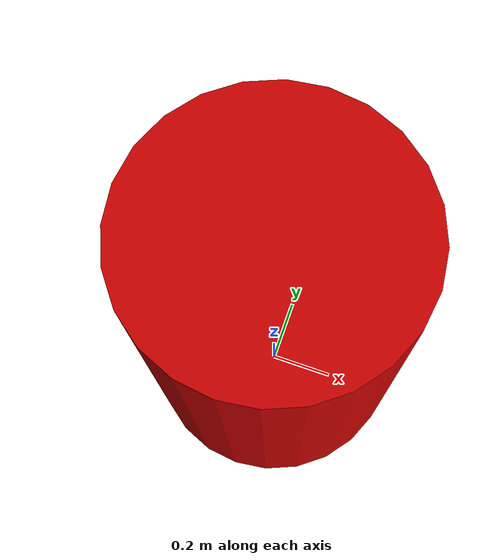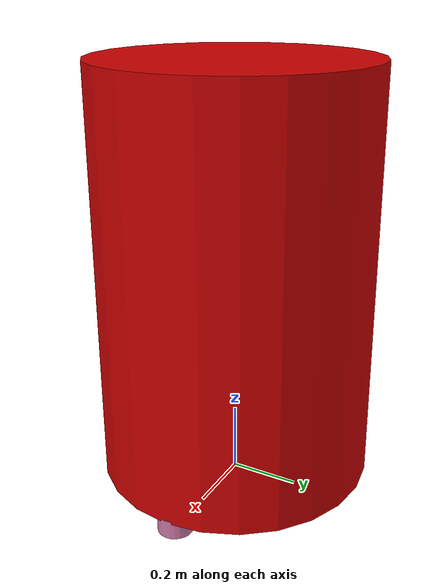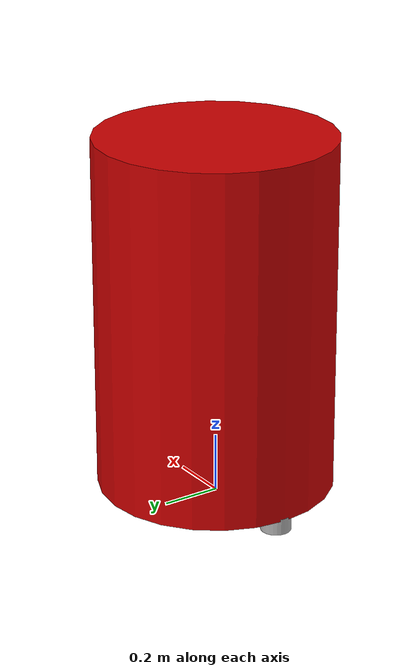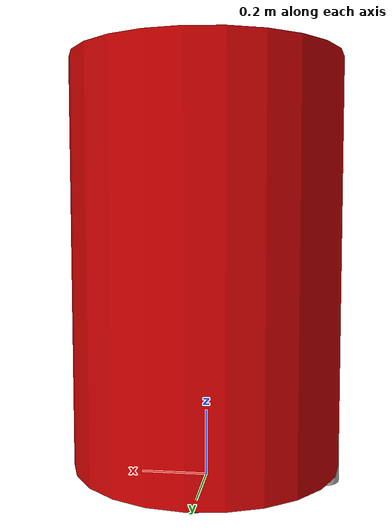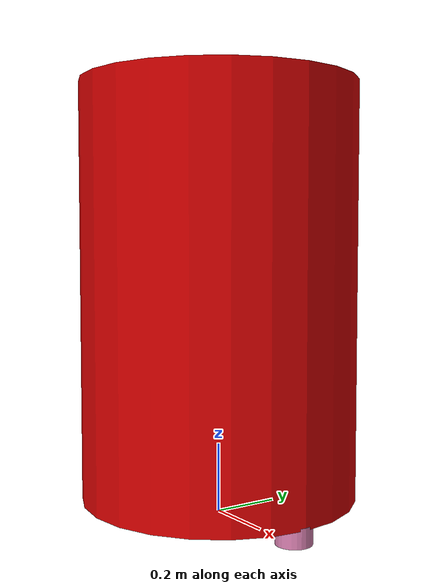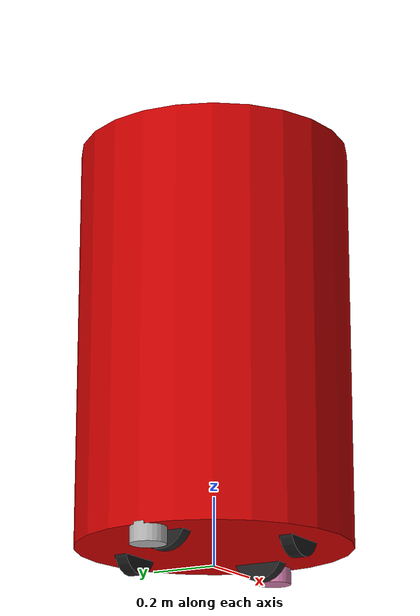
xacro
<?xml version="1.0"?>
<robot xmlns:xacro="http://www.ros.org/wiki/xacro">

    <xacro:include filename="inertial_macros.xacro"/>

    <material name="white">
        <color rgba="1 1 1 1"/>
    </material>

    <material name="orange">
		<color rgba="1 0.3 0.1 1"/>
    </material>

    <material name="blue">
		<color rgba="0.2 0.2 1 1"/>
    </material>

    <material name="black">
		<color rgba="0 0 0 1"/>
    </material>

	<material name="red">
		<color rgba="0.8 0.0 0.0 1"/>
	</material>

	<material name="green">
		<color rgba="0.0 0.8 0.0 1"/>
	</material>

    <!-- BASE LINK -->

    <link name="base_link_r2">
    </link>

    <!-- chassis_r2 LINK -->
	<joint name="chassis_r2_joint" type="fixed">
		<parent link="base_link_r2"/>
		<child link="chassis_r2"/>
		<origin xyz="0 0 0.55"/>
	</joint>

	<link name="chassis_r2">
		<visual>
			<origin xyz="0 0 0.1"/>
			<geometry>
				<cylinder radius="0.4" length="1.2"/>
			</geometry>
			<material name="red"/>
		</visual>

		<collision>
			<origin xyz="0 0 0.2"/>
			<geometry>
				<cylinder radius="0.4" length="1.2"/>
			</geometry>
		</collision>

		<xacro:inertial_cylinder mass="25.0" radius="0.4" length="1.2">
        	<origin xyz="0 0 -0.6" rpy="0 0 0"/>
    	</xacro:inertial_cylinder>
	</link>

	<gazebo reference="chassis_r2">
        <material>Gazebo/White</material>
    </gazebo>

	<!-- WHEEL1 LINK -->
	<joint name="wheel1_joint_r2" type="continuous">
		<parent link="base_link_r2"/>
		<child link="wheel1_link_r2"/>
		<origin xyz="0 0.27 0.08" rpy="-${pi/2} 0 0"/>
		<axis xyz="0 0 1"/>
	</joint>

	<link name="wheel1_link_r2">
		<visual>
			<geometry>
				<cylinder radius="0.08" length="0.04"/>
			</geometry>
		</visual>

		<collision>
			<geometry>
				<cylinder radius="0.08" length="0.04"/>
			</geometry>
		</collision>

		<xacro:inertial_cylinder mass="0.1" length="0.4" radius="0.8">
        	<origin xyz="0 0 0" rpy="0 0 0"/>
    	</xacro:inertial_cylinder>
	</link>

	<gazebo reference="wheel1_link_r2">
        <material>Gazebo/Black</material>
		<mu1 value="0.5"/>
		<mu2 value="0.5"/>
    </gazebo>

	<!-- WHEEL2 LINK -->
	<joint name="wheel2_joint_r2" type="continuous">
		<parent link="base_link_r2"/>
		<child link="wheel2_link_r2"/>
		<origin xyz="0 -0.27 0.08" rpy="${pi/2} 0 0"/>
		<axis xyz="0 0 -1"/>
	</joint>

	<link name="wheel2_link_r2">
		<visual>
			<geometry>
				<cylinder radius="0.08" length="0.04"/>
			</geometry>
		</visual>

		<collision>
			<geometry>
				<cylinder radius="0.08" length="0.04"/>
			</geometry>
		</collision>

		<xacro:inertial_cylinder mass="0.1" length="0.4" radius="0.8">
        	<origin xyz="0 0 0" rpy="0 0 0"/>
    	</xacro:inertial_cylinder>
	</link>

	<gazebo reference="wheel2_link_r2">
        <material>Gazebo/Black</material>
		<mu1 value="0.5"/>
		<mu2 value="0.5"/>
    </gazebo>

	<!-- WHEEL3 LINK -->
	<joint name="wheel3_joint_r2" type="continuous">
		<parent link="base_link_r2"/>
		<child link="wheel3_link_r2"/>
		<origin xyz="0.27 0 0.08" rpy="${-pi/2} 0 ${-pi/2}"/>
		<axis xyz="0 0 1"/>
	</joint>

	<link name="wheel3_link_r2">
		<visual>
			<geometry>
				<cylinder radius="0.08" length="0.04"/>
			</geometry>
		</visual>

		<collision>
			<geometry>
				<cylinder radius="0.08" length="0.04"/>
			</geometry>
		</collision>

		<xacro:inertial_cylinder mass="0.1" length="0.4" radius="0.8">
        	<origin xyz="0 0 0" rpy="0 0 0"/>
    	</xacro:inertial_cylinder>
	</link>

	<gazebo reference="wheel3_link_r2">
        <material>Gazebo/Black</material>
		<mu1 value="0.5"/>
		<mu2 value="0.5"/>
    </gazebo>

	<!-- WHEEL4 LINK -->
	<joint name="wheel4_joint_r2" type="continuous">
		<parent link="base_link_r2"/>
		<child link="wheel4_link_r2"/>
		<origin xyz="-0.27 0 0.08" rpy="${pi/2} 0 ${-pi/2}"/>
		<axis xyz="0 0 -1"/>
	</joint>

	<link name="wheel4_link_r2">
		<visual>
			<geometry>
				<cylinder radius="0.08" length="0.04"/>
			</geometry>
		</visual>

		<collision>
			<geometry>
				<cylinder radius="0.08" length="0.04"/>
			</geometry>
		</collision>

		<xacro:inertial_cylinder mass="0.1" length="0.4" radius="0.8">
        	<origin xyz="0 0 0" rpy="0 0 0"/>
    	</xacro:inertial_cylinder>
	</link>

	<gazebo reference="wheel4_link_r2">
        <material>Gazebo/Black</material>
		<mu1 value="0.5"/>
		<mu2 value="0.5"/>
    </gazebo>

	<link name="lidar_link_1_r2">
    <inertial>
      <origin xyz="0 0 0" rpy="0 0 0"/>
      <mass value="0.125"/>
      <inertia ixx="0.001"  ixy="0"  ixz="0" iyy="0.001" iyz="0" izz="0.001" />
    </inertial>

    <collision>
      <origin xyz="0 0 0" rpy="0 0 0"/>
      <geometry>
         <cylinder radius="0.0508" length="0.055"/>
      </geometry>
    </collision>

    <visual>
      <origin xyz="0 0 0" rpy="0 0 0"/>
      <geometry>
         <cylinder radius="0.0508" length="0.055"/>
      </geometry>
    </visual>
  </link>

  <joint name="lidar_joint1_r2" type="fixed">
    <parent link="base_link_r2"/>
    <child link="lidar_link_1_r2"/>
    <origin xyz="0.35 0 0.03" rpy="0 0 0"/>
  </joint>

  <gazebo reference="lidar_link_1_r2">
    <sensor name="laser1_r2" type="ray">
      <always_on>true</always_on>
      <visualize>true</visualize>
      <update_rate>40</update_rate>
      <ray>
        <scan>
          <horizontal>
            <samples>720</samples>
            <min_angle>-1.57</min_angle>
            <max_angle>1.57</max_angle>
          </horizontal>
        </scan>
        <range>
          <min>0.100000</min>
          <max>7.8</max>
          <resolution>0.015000</resolution>
        </range>
        <noise>
          <type>gaussian</type>
          <mean>0.0</mean>
          <stddev>0.02</stddev>
        </noise>
      </ray>
      <plugin name="laser_controller_1_r2" filename="libgazebo_ros_ray_sensor.so">
        <ros>
          <argument>~/out:=r2/scan_1</argument>
        </ros>
        <output_type>sensor_msgs/LaserScan</output_type>
        <frame_name>lidar_link_1_r2</frame_name>
      </plugin>
    </sensor>
  </gazebo>

  <link name="lidar_link_2_r2">
    <inertial>
      <origin xyz="0 0 0" rpy="0 0 0"/>
      <mass value="0.125"/>
      <inertia ixx="0.001"  ixy="0"  ixz="0" iyy="0.001" iyz="0" izz="0.001" />
    </inertial>

    <collision>
      <origin xyz="0 0 0" rpy="0 0 0"/>
      <geometry>
         <cylinder radius="0.0508" length="0.055"/>
      </geometry>
    </collision>

    <visual>
      <origin xyz="0 0 0" rpy="0 0 0"/>
      <geometry>
         <cylinder radius="0.0508" length="0.055"/>
      </geometry>
    </visual>
  </link>

  <joint name="lidar_joint2_r2" type="fixed">
    <parent link="base_link_r2"/>
    <child link="lidar_link_2_r2"/>
	<origin xyz="-0.35 0 0.03" rpy="0 0 3.141593"/>
  </joint>

  <gazebo reference="lidar_link_2_r2">
    <sensor name="laser2_r2" type="ray">
      <always_on>true</always_on>
      <visualize>true</visualize>
      <update_rate>40</update_rate>
      <ray>
        <scan>
          <horizontal>
            <samples>720</samples>
            <min_angle>-1.57</min_angle>
            <max_angle>1.57</max_angle>
          </horizontal>
        </scan>
        <range>
          <min>0.100000</min>
          <max>7.8</max>
          <resolution>0.015</resolution>
        </range>
        <noise>
          <type>gaussian</type>
          <mean>0.0</mean>
          <stddev>0.02</stddev>
        </noise>
      </ray>
      <plugin name="laser_controller_2_r2" filename="libgazebo_ros_ray_sensor.so">
        <ros>
          <argument>~/out:=r2/scan_2</argument>
        </ros>
        <output_type>sensor_msgs/LaserScan</output_type>
        <frame_name>lidar_link_2_r2</frame_name>
      </plugin>
    </sensor>
  </gazebo>

  <link name="imu_link_r2">
    <visual>
      <geometry>
        <box size="0.1 0.1 0.1"/>
      </geometry>
    </visual>
  </link>

  <joint name="imu_joint_r2" type="fixed">
    <parent link="base_link_r2"/>
    <child link="imu_link_r2"/>
    <origin xyz="0 0 0.5"/>
  </joint>

  <gazebo reference="imu_link_r2">
    <sensor name="imu_sensor_r2" type="imu">
      <plugin filename="libgazebo_ros_imu_sensor.so" name="imu_plugin_r1">
        <ros>
          <remapping>~/out:=r2/imu/data_r2</remapping>
        </ros>
		<frame_name>imu_link_r2</frame_name>
        <initial_orientation_as_reference>false</initial_orientation_as_reference>
      </plugin>
      <always_on>true</always_on>
      <update_rate>50</update_rate>
      <visualize>true</visualize>
     <imu>
     	<angular_velocity>
     	  <x>
     	    <noise type="gaussian">
              <mean>0.0</mean>
              <stddev>2e-4</stddev>
              <bias_mean>0.0000075</bias_mean>
              <bias_stddev>0.0000008</bias_stddev>
            </noise>
          </x>
          <y>
            <noise type="gaussian">
              <mean>0.0</mean>
              <stddev>2e-4</stddev>
              <bias_mean>0.0000075</bias_mean>
              <bias_stddev>0.0000008</bias_stddev>
            </noise>
          </y>
          <z>
            <noise type="gaussian">
              <mean>0.0</mean>
              <stddev>2e-4</stddev>
              <bias_mean>0.0000075</bias_mean>
              <bias_stddev>0.0000008</bias_stddev>
            </noise>
          </z>
        </angular_velocity>
        <linear_acceleration>
          <x>
            <noise type="gaussian">
              <mean>0.0</mean>
              <stddev>1.7e-2</stddev>
              <bias_mean>0.1</bias_mean>
              <bias_stddev>0.001</bias_stddev>
            </noise>
          </x>
          <y>
            <noise type="gaussian">
              <mean>0.0</mean>
              <stddev>1.7e-2</stddev>
              <bias_mean>0.1</bias_mean>
              <bias_stddev>0.001</bias_stddev>
            </noise>
          </y>
          <z>
            <noise type="gaussian">
              <mean>0.0</mean>
              <stddev>1.7e-2</stddev>
              <bias_mean>0.1</bias_mean>
              <bias_stddev>0.001</bias_stddev>
            </noise>
          </z>
        </linear_acceleration>
      </imu>
    </sensor>
  </gazebo>

</robot>
